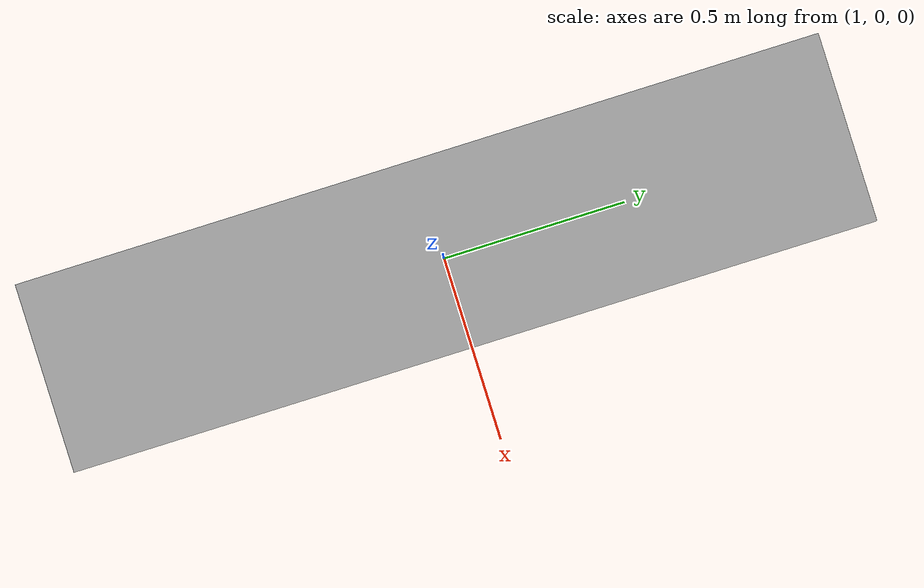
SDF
<?xml version="1.0" ?>
<sdf version="1.5">
  <model name="MPNet_Bookshelf">
    <pose frame="world">1.2 0.0 0.75 1.5708 0 -1.5708</pose>
    <static>true</static>
    <link name="link">
      <inertial>
        <mass>0.1</mass>
      </inertial>
      <visual name="visual">
        <geometry>
          <mesh>
            <uri>model://MPNet_Bookshelf/meshes/bookshelf_light.stl</uri>
            <scale>0.022 0.01 0.01</scale>
          </mesh>
        </geometry>
      </visual>
    </link>
  </model>
</sdf>
